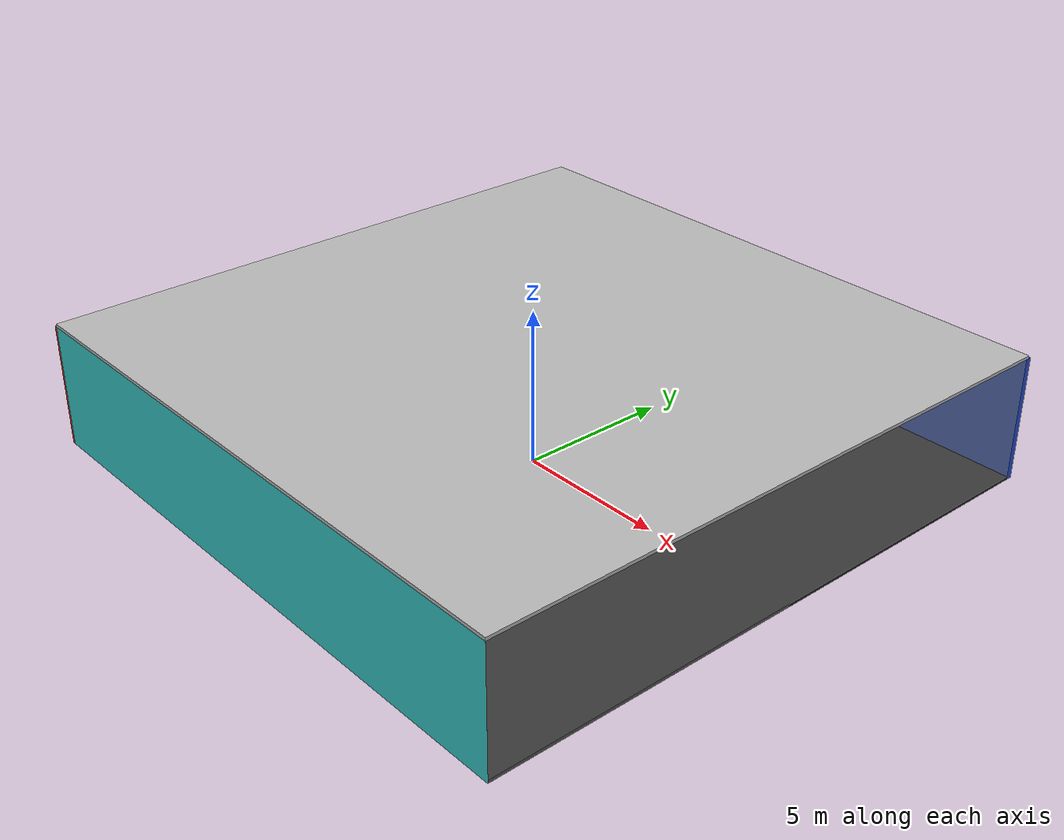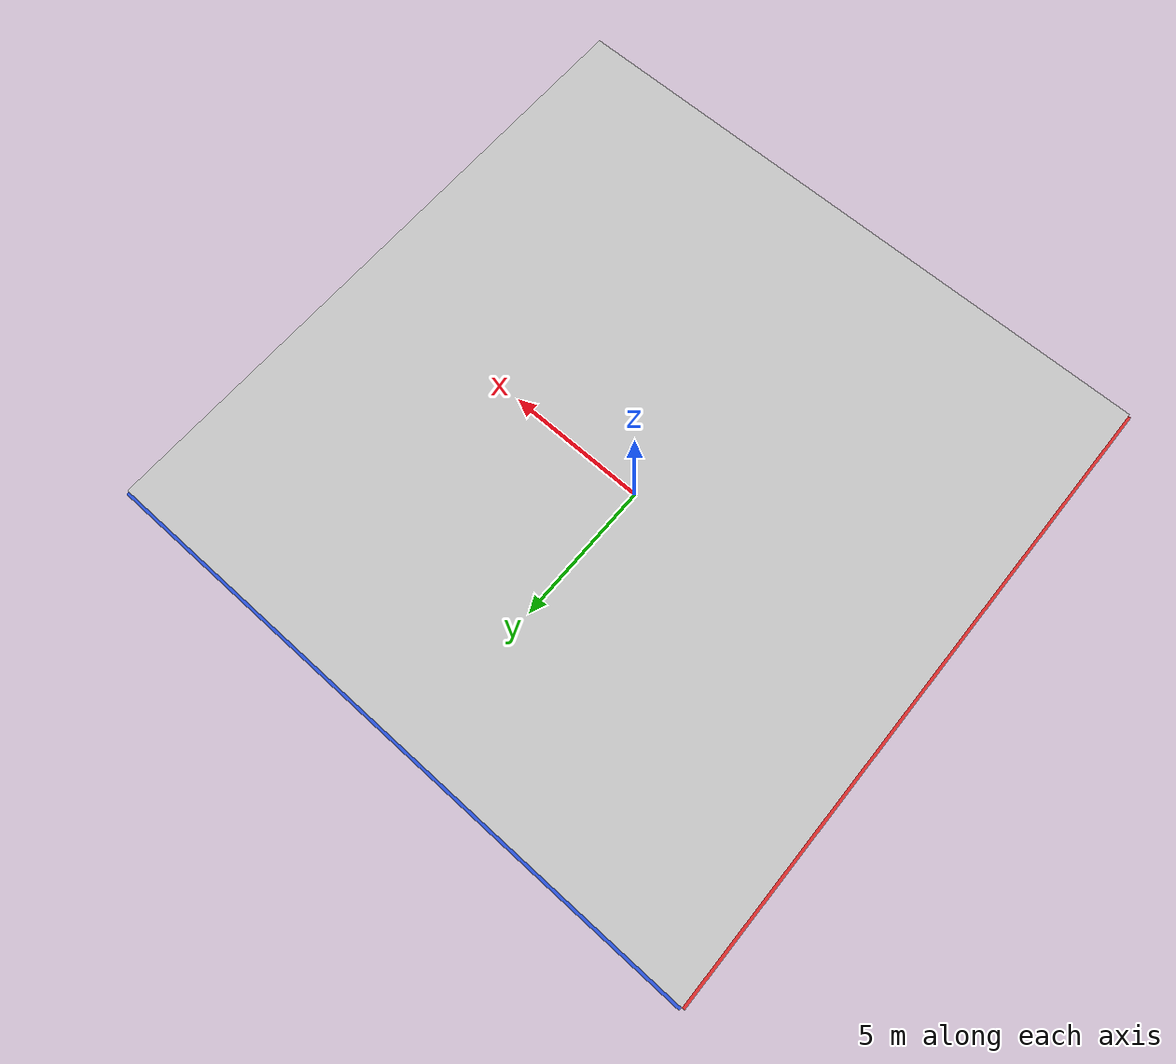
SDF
<sdf version="1.4">
 <world name="default">
  <physics type="ode">
   <max_step_size>0.001</max_step_size>
   <real_time_factor>1</real_time_factor>
   <real_time_update_rate>1000</real_time_update_rate>
   <gravity>0 0 -9.8</gravity>
  </physics>
  <scene><ambient>0.4 0.4 0.4 1</ambient><background>0.7 0.7 0.7 1</background><shadows>1</shadows></scene>
  <model name="Surrounding">
   <static>1</static>
   <link name="Ceiling">
    <collision name="Ceiling_Collision"><geometry><box><size>20 20 0.1</size></box></geometry></collision>
    <visual name="Ceiling_Visual">
     <geometry><box><size>20 20 0.1</size></box></geometry>
     <material>
      <script><uri>file://media/materials/scripts/gazebo.material</uri><name>Gazebo/LightOff</name></script>
     </material>
    </visual>
    <pose>0 0 4.05 0 0 0</pose>
   </link>
   <link name="Wall_South">
    <collision name="Wall_South_Collision">
     <geometry><box><size>20 0 4</size></box></geometry>
     <pose>0 0 2 0 -0 0</pose>
    </collision>
    <visual name="Wall_South_Visual">
     <pose>0 0 2 0 -0 0</pose>
     <geometry><box><size>20 0 4</size></box></geometry>
     <material>
      <script><uri>file://media/materials/scripts/gazebo.material</uri><name>Gazebo/TurquoiseGlow</name></script>
     </material>
    </visual>
    <velocity_decay><linear>0</linear><angular>0</angular></velocity_decay>
    <pose>0 -10 0 0 -0 0</pose>
   </link>
   <link name="Wall_East">
    <collision name="Wall_21_Collision">
     <geometry><box><size>20 0 4</size></box></geometry>
     <pose>0 0 2 0 -0 0</pose>
    </collision>
    <visual name="Wall_21_Visual">
     <pose>0 0 2 0 -0 0</pose>
     <geometry><box><size>20 0 4</size></box></geometry>
     <material>
      <script><uri>file://media/materials/scripts/gazebo.material</uri><name>Gazebo/GreyTransparent</name></script>
     </material>
    </visual>
    <velocity_decay><linear>0</linear><angular>0</angular></velocity_decay>
    <pose>10 0 0 0 -0 1.5708</pose>
   </link>
   <link name="Wall_North">
    <collision name="Wall_22_Collision">
     <geometry><box><size>20 0.2 4</size></box></geometry>
     <pose>0 0 2 0 -0 0</pose>
    </collision>
    <visual name="Wall_22_Visual">
     <pose>0 0 2 0 -0 0</pose>
     <geometry><box><size>20 0.2 4</size></box></geometry>
     <material>
      <script><uri>file://media/materials/scripts/gazebo.material</uri><name>Gazebo/Blue</name></script>
     </material>
    </visual>
    <velocity_decay><linear>0</linear><angular>0</angular></velocity_decay>
    <pose>0 10 0 0 -0 0</pose>
   </link>
   <link name="Wall_West">
    <collision name="Wall_23_Collision">
     <geometry><box><size>20 0.2 4</size></box></geometry>
     <pose>0 0 2 0 -0 0</pose>
    </collision>
    <visual name="Wall_23_Visual">
     <pose>0 0 2 0 -0 0</pose>
     <geometry><box><size>20 0.2 4</size></box></geometry>
     <material>
      <script><uri>file://media/materials/scripts/gazebo.material</uri><name>Gazebo/RedGlow</name></script>
     </material>
    </visual>
    <velocity_decay><linear>0</linear><angular>0</angular></velocity_decay>
    <pose>-10 0 0 0 0 -1.5708</pose>
   </link>
   <link name="Ground_link">
    <collision name="collision">
     <pose>0 0 .05 0 -0 0</pose>
     <geometry><box><size>20 20 0.1</size></box></geometry>
    </collision>
    <visual name="visual">
     <pose>0 0 .05 0 -0 0</pose>
     <geometry><box><size>20 20 0.1</size></box></geometry>
     <material>
      <script><uri>file://media/materials/scripts/gazebo.material</uri><name>Gazebo/Black</name></script>
     </material>
    </visual>
   </link>
   <static>1</static>
  </model>
  <spherical_coordinates>
   <surface_model>EARTH_WGS84</surface_model>
   <latitude_deg>0</latitude_deg>
   <longitude_deg>0</longitude_deg>
   <elevation>0</elevation>
   <heading_deg>0</heading_deg>
  </spherical_coordinates>
  <light name="lightball_0" type="diffuse">
   <diffuse>0.8 0.8 0.8 1</diffuse>
   <specular>0.2 0.2 0.2 1</specular>
   <attenuation>
    <range>100</range>
    <constant>0.7</constant>
    <linear>0.01</linear>
    <quadratic>0.001</quadratic>
   </attenuation>
   <direction>-0.5 0.1 -0.9</direction>
   <pose>-5.14839299465 5.09620930022 1.08367930139 0 0 0</pose>
  </light>
  <light name="lightball_1" type="diffuse">
   <diffuse>0.8 0.8 0.8 1</diffuse>
   <specular>0.2 0.2 0.2 1</specular>
   <attenuation>
    <range>100</range>
    <constant>0.7</constant>
    <linear>0.01</linear>
    <quadratic>0.001</quadratic>
   </attenuation>
   <direction>-0.5 0.1 -0.9</direction>
   <pose>-5.85783061773 4.71856030956 1.22049590876 0 0 0</pose>
  </light>
  <light name="lightball_2" type="diffuse">
   <diffuse>0.8 0.8 0.8 1</diffuse>
   <specular>0.2 0.2 0.2 1</specular>
   <attenuation>
    <range>100</range>
    <constant>0.7</constant>
    <linear>0.01</linear>
    <quadratic>0.001</quadratic>
   </attenuation>
   <direction>-0.5 0.1 -0.9</direction>
   <pose>0.872306026749 -8.79921510939 3.86190756241 0 0 0</pose>
  </light>
  <light name="lightball_3" type="diffuse">
   <diffuse>0.8 0.8 0.8 1</diffuse>
   <specular>0.2 0.2 0.2 1</specular>
   <attenuation>
    <range>100</range>
    <constant>0.7</constant>
    <linear>0.01</linear>
    <quadratic>0.001</quadratic>
   </attenuation>
   <direction>-0.5 0.1 -0.9</direction>
   <pose>2.20958163856 -0.261047862737 2.30818716115 0 0 0</pose>
  </light>
  <light name="lightball_4" type="diffuse">
   <diffuse>0.8 0.8 0.8 1</diffuse>
   <specular>0.2 0.2 0.2 1</specular>
   <attenuation>
    <range>100</range>
    <constant>0.7</constant>
    <linear>0.01</linear>
    <quadratic>0.001</quadratic>
   </attenuation>
   <direction>-0.5 0.1 -0.9</direction>
   <pose>-0.427116430407 8.19392398339 1.46631035024 0 0 0</pose>
  </light>
  <light name="lightball_5" type="diffuse">
   <diffuse>0.8 0.8 0.8 1</diffuse>
   <specular>0.2 0.2 0.2 1</specular>
   <attenuation>
    <range>100</range>
    <constant>0.7</constant>
    <linear>0.01</linear>
    <quadratic>0.001</quadratic>
   </attenuation>
   <direction>-0.5 0.1 -0.9</direction>
   <pose>9.12736184194 3.07231357453 1.3136583923 0 0 0</pose>
  </light>
  <include>
   <uri>model://textured_shapes</uri>
   <pose>-0.880715644514 2.63410018157 0 0 0 0.078422784703</pose>
  </include>
  <include>
   <uri>model://construction_cone</uri>
   <pose>1.30962641177 -3.67352306857 0 0 0 1.73498869605</pose>
  </include>
 </world>
</sdf>

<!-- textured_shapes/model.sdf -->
<sdf version="1.6">
  <model name="textured_shapes">
    <pose>0 0 0.5 0 0 0</pose>
    <link name="box">
      <pose>0 -1.5 0 0 0 0</pose>
      <collision name="collision">
        <geometry>
          <box>
            <size>1 1 1</size>
          </box>
        </geometry>
      </collision>
      <visual name="visual">
        <geometry>
          <box>
            <size>1 1 1</size>
          </box>
        </geometry>
        <material>
          <script>
            <uri>model://../model_source/models/textured_shapes/materials/scripts</uri>
            <uri>model://../model_source/models/textured_shapes/materials/textures</uri>
            <name>TexturedShape/Squares</name>
          </script>
        </material>
      </visual>
    </link>
    <link name="sphere">
      <collision name="collision">
        <geometry>
          <sphere>
            <radius>0.5</radius>
          </sphere>
        </geometry>
      </collision>
      <visual name="visual">
        <geometry>
          <sphere>
            <radius>0.5</radius>
          </sphere>
        </geometry>
        <material>
          <script>
            <uri>model://../model_source/models/textured_shapes/materials/scripts</uri>
            <uri>model://../model_source/models/textured_shapes/materials/textures</uri>
            <name>TexturedShape/Squares</name>
          </script>
        </material>
      </visual>
    </link>
    <link name="cylinder">
      <pose>0 1.5 0 0 0 0</pose>
      <collision name="collision">
        <geometry>
          <cylinder>
            <radius>0.5</radius>
            <length>1</length>
          </cylinder>
        </geometry>
      </collision>
      <visual name="visual">
        <geometry>
          <cylinder>
            <radius>0.5</radius>
            <length>1</length>
          </cylinder>
        </geometry>
        <material>
          <script>
            <uri>model://../model_source/models/textured_shapes/materials/scripts</uri>
            <uri>model://../model_source/models/textured_shapes/materials/textures</uri>
            <name>TexturedShape/Squares</name>
          </script>
        </material>
      </visual>
    </link>
  </model>
</sdf>

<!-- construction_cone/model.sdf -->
<sdf version="1.5">
  <model name="Construction Cone">
    <link name="link">
      <collision name="collision">
        <geometry>
          <mesh>
            <scale>10 10 10</scale>
            <uri>file://isr-testbed/construction_cone/meshes/construction_cone.dae</uri>
          </mesh>
        </geometry>
      </collision>
      <visual name="visual">
        <geometry>
          <mesh>
            <scale>10 10 10</scale>
            <uri>file://isr-testbed/construction_cone/meshes/construction_cone.dae</uri>
          </mesh>
        </geometry>
      </visual>
    </link>
  </model>
</sdf>
